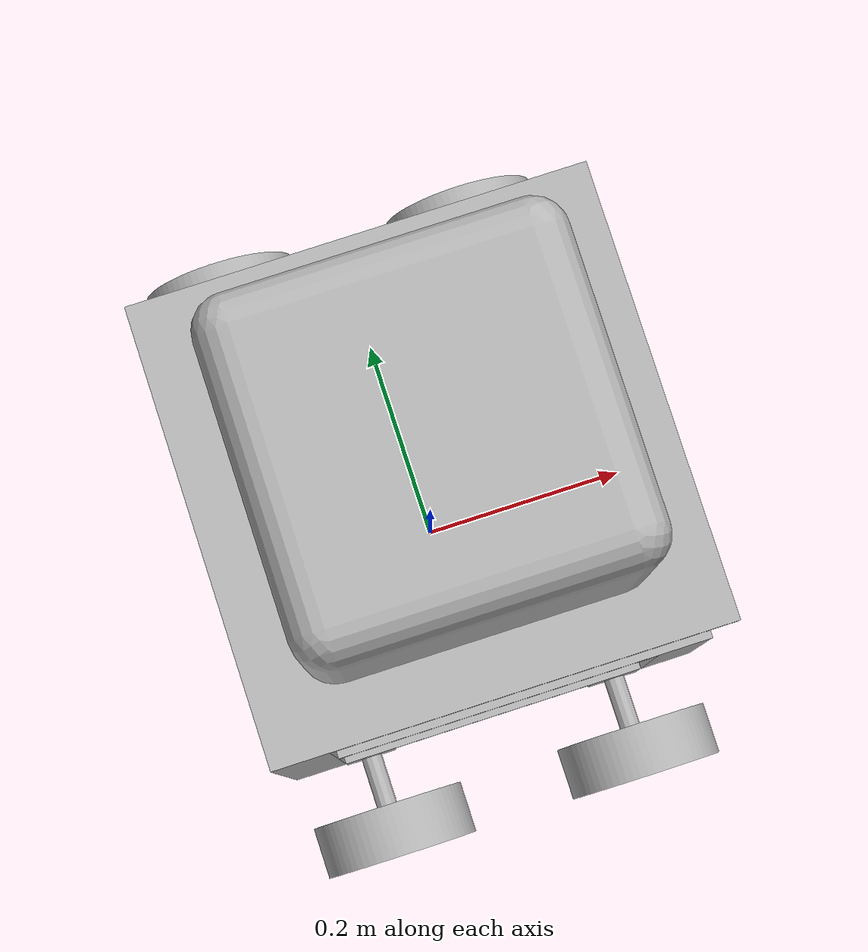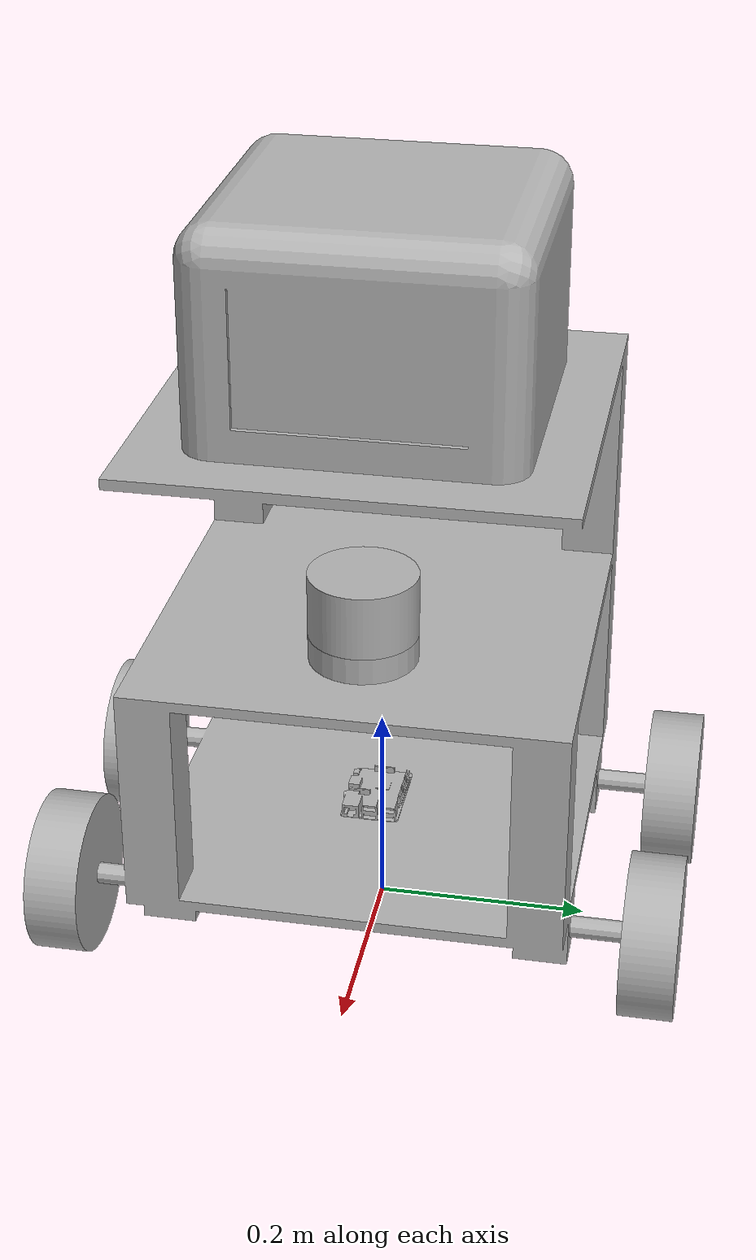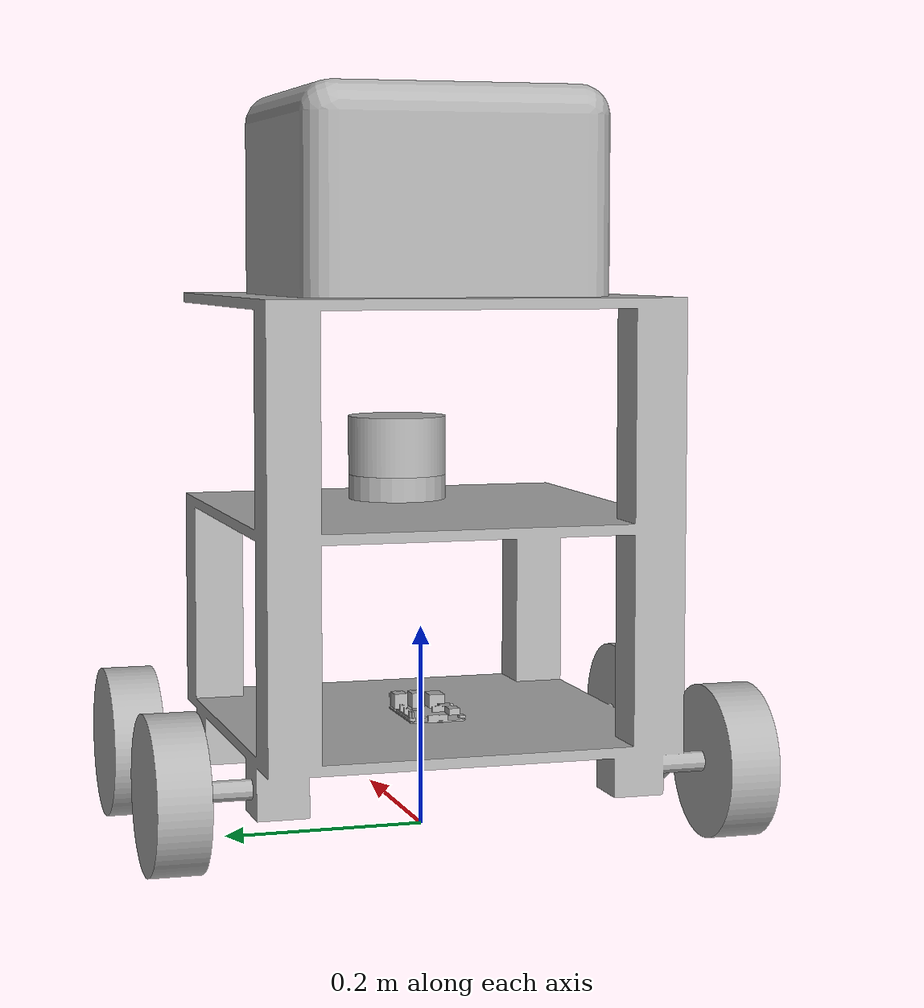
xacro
<?xml version="1.0" ?>
<robot name="Capstone" xmlns:xacro="http://www.ros.org/wiki/xacro">

<xacro:include filename="$(find Capstone_description)/urdf/materials.xacro" />
<xacro:include filename="$(find Capstone_description)/urdf/Capstone.trans" />
<xacro:include filename="$(find Capstone_description)/urdf/Capstone.gazebo" />
<link name="base_link">
  <inertial>
    <origin rpy="0 0 0" xyz="-0.007333091070869468 -7.78480598572087e-14 0.36099165808346584"/>
    <mass value="7.557165209995007"/>
    <inertia ixx="0.455001" ixy="0.0" ixz="0.003127" iyy="0.450316" iyz="-0.0" izz="0.244734"/>
  </inertial>
  <visual>
    <origin rpy="0 0 0" xyz="0 0 0"/>
    <geometry>
      <mesh filename="package://Capstone_description/meshes/base_link.stl" scale="0.001 0.001 0.001"/>
    </geometry>
    <material name="silver"/>
  </visual>
  <collision>
    <origin rpy="0 0 0" xyz="0 0 0"/>
    <geometry>
      <mesh filename="package://Capstone_description/meshes/base_link.stl" scale="0.001 0.001 0.001"/>
    </geometry>
  </collision>
</link>

<link name="lidar_1">
  <inertial>
    <origin rpy="0 0 0" xyz="-1.3877787807814457e-17 9.650038500203379e-18 0.030000000000000027"/>
    <mass value="0.4995132319207772"/>
    <inertia ixx="0.000462" ixy="-0.0" ixz="0.0" iyy="0.000462" iyz="0.0" izz="0.000624"/>
  </inertial>
  <visual>
    <origin rpy="0 0 0" xyz="-0.09 -0.0 -0.345"/>
    <geometry>
      <mesh filename="package://Capstone_description/meshes/lidar_1.stl" scale="0.001 0.001 0.001"/>
    </geometry>
    <material name="silver"/>
  </visual>
  <collision>
    <origin rpy="0 0 0" xyz="-0.09 -0.0 -0.345"/>
    <geometry>
      <mesh filename="package://Capstone_description/meshes/lidar_1.stl" scale="0.001 0.001 0.001"/>
    </geometry>
  </collision>
</link>

<link name="pi_1">
  <inertial>
    <origin rpy="0 0 0" xyz="-0.18603452748026733 -0.006754008365086289 0.005888830680916862"/>
    <mass value="0.018191716731074097"/>
    <inertia ixx="6e-06" ixy="-0.0" ixz="-1e-06" iyy="1.1e-05" iyz="0.0" izz="1.6e-05"/>
  </inertial>
  <visual>
    <origin rpy="0 0 0" xyz="-0.2 -0.0 -0.11"/>
    <geometry>
      <mesh filename="package://Capstone_description/meshes/pi_1.stl" scale="0.001 0.001 0.001"/>
    </geometry>
    <material name="silver"/>
  </visual>
  <collision>
    <origin rpy="0 0 0" xyz="-0.2 -0.0 -0.11"/>
    <geometry>
      <mesh filename="package://Capstone_description/meshes/pi_1.stl" scale="0.001 0.001 0.001"/>
    </geometry>
  </collision>
</link>

<link name="right_back_1">
  <inertial>
    <origin rpy="0 0 0" xyz="-2.7755575615628914e-17 -0.025000000000000078 0.0"/>
    <mass value="0.8217228284545802"/>
    <inertia ixx="0.001327" ixy="0.0" ixz="-0.0" iyy="0.002311" iyz="0.0" izz="0.001327"/>
  </inertial>
  <visual>
    <origin rpy="0 0 0" xyz="0.125 0.25 -0.075"/>
    <geometry>
      <mesh filename="package://Capstone_description/meshes/right_back_1.stl" scale="0.001 0.001 0.001"/>
    </geometry>
    <material name="silver"/>
  </visual>
  <collision>
    <origin rpy="0 0 0" xyz="0.125 0.25 -0.075"/>
    <geometry>
      <mesh filename="package://Capstone_description/meshes/right_back_1.stl" scale="0.001 0.001 0.001"/>
    </geometry>
  </collision>
</link>

<link name="right_front_1">
  <inertial>
    <origin rpy="0 0 0" xyz="-1.3877787807814457e-17 -0.025000000000000022 0.0"/>
    <mass value="0.8217228284545802"/>
    <inertia ixx="0.001327" ixy="0.0" ixz="-0.0" iyy="0.002311" iyz="0.0" izz="0.001327"/>
  </inertial>
  <visual>
    <origin rpy="0 0 0" xyz="-0.125 0.25 -0.075"/>
    <geometry>
      <mesh filename="package://Capstone_description/meshes/right_front_1.stl" scale="0.001 0.001 0.001"/>
    </geometry>
    <material name="silver"/>
  </visual>
  <collision>
    <origin rpy="0 0 0" xyz="-0.125 0.25 -0.075"/>
    <geometry>
      <mesh filename="package://Capstone_description/meshes/right_front_1.stl" scale="0.001 0.001 0.001"/>
    </geometry>
  </collision>
</link>

<link name="left_front_1">
  <inertial>
    <origin rpy="0 0 0" xyz="-1.3877787807814457e-17 0.025000000000000022 0.0"/>
    <mass value="0.8217228284545802"/>
    <inertia ixx="0.001327" ixy="-0.0" ixz="-0.0" iyy="0.002311" iyz="0.0" izz="0.001327"/>
  </inertial>
  <visual>
    <origin rpy="0 0 0" xyz="-0.125 -0.25 -0.075"/>
    <geometry>
      <mesh filename="package://Capstone_description/meshes/left_front_1.stl" scale="0.001 0.001 0.001"/>
    </geometry>
    <material name="silver"/>
  </visual>
  <collision>
    <origin rpy="0 0 0" xyz="-0.125 -0.25 -0.075"/>
    <geometry>
      <mesh filename="package://Capstone_description/meshes/left_front_1.stl" scale="0.001 0.001 0.001"/>
    </geometry>
  </collision>
</link>

<link name="left_back_1">
  <inertial>
    <origin rpy="0 0 0" xyz="-2.7755575615628914e-17 0.025000000000000022 0.0"/>
    <mass value="0.8217228284545802"/>
    <inertia ixx="0.001327" ixy="-0.0" ixz="-0.0" iyy="0.002311" iyz="0.0" izz="0.001327"/>
  </inertial>
  <visual>
    <origin rpy="0 0 0" xyz="0.125 -0.25 -0.075"/>
    <geometry>
      <mesh filename="package://Capstone_description/meshes/left_back_1.stl" scale="0.001 0.001 0.001"/>
    </geometry>
    <material name="silver"/>
  </visual>
  <collision>
    <origin rpy="0 0 0" xyz="0.125 -0.25 -0.075"/>
    <geometry>
      <mesh filename="package://Capstone_description/meshes/left_back_1.stl" scale="0.001 0.001 0.001"/>
    </geometry>
  </collision>
</link>

<joint name="Rigid2" type="fixed">
  <origin rpy="0 0 0" xyz="0.09 0.0 0.345"/>
  <parent link="base_link"/>
  <child link="lidar_1"/>
</joint>

<joint name="Rigid3" type="fixed">
  <origin rpy="0 0 0" xyz="0.2 0.0 0.11"/>
  <parent link="base_link"/>
  <child link="pi_1"/>
</joint>

<joint name="Rev4" type="continuous">
  <origin rpy="0 0 0" xyz="-0.125 -0.25 0.075"/>
  <parent link="base_link"/>
  <child link="right_back_1"/>
  <axis xyz="0.0 1.0 0.0"/>
</joint>

<joint name="Rev5" type="continuous">
  <origin rpy="0 0 0" xyz="0.125 -0.25 0.075"/>
  <parent link="base_link"/>
  <child link="right_front_1"/>
  <axis xyz="0.0 1.0 0.0"/>
</joint>

<joint name="Rev6" type="continuous">
  <origin rpy="0 0 0" xyz="0.125 0.25 0.075"/>
  <parent link="base_link"/>
  <child link="left_front_1"/>
  <axis xyz="0.0 1.0 0.0"/>
</joint>

<joint name="Rev7" type="continuous">
  <origin rpy="0 0 0" xyz="-0.125 0.25 0.075"/>
  <parent link="base_link"/>
  <child link="left_back_1"/>
  <axis xyz="0.0 1.0 0.0"/>
</joint>

</robot>

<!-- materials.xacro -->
<robot name="Capstone" xmlns:xacro="http://www.ros.org/wiki/xacro" >

<material name="silver">
  <color rgba="0.700 0.700 0.700 1.000"/>
</material>

</robot>

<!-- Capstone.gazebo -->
<robot name="Capstone" xmlns:xacro="http://www.ros.org/wiki/xacro" >

<xacro:property name="body_color" value="Gazebo/Silver" />
<xacro:property name="wheel_color" value="Gazebo/Black" />
<xacro:property name="pi_color" value="Gazebo/Green" />
<xacro:property name="lidar_color" value="Gazebo/Red" />

<gazebo>
  <plugin filename="libgazebo_ros_control.so" name="control"/>
</gazebo>
<gazebo reference="base_link">
  <material>${body_color}</material>
  <mu1>0.2</mu1>
  <mu2>0.2</mu2>
  <selfCollide>true</selfCollide>
  <gravity>true</gravity>
</gazebo>

<gazebo reference="lidar_1">
  <material>${lidar_color}</material>
  <mu1>0.2</mu1>
  <mu2>0.2</mu2>
  <selfCollide>true</selfCollide>
</gazebo>

<gazebo reference="pi_1">
  <material>${pi_color}</material>
  <mu1>0.2</mu1>
  <mu2>0.2</mu2>
  <selfCollide>true</selfCollide>
</gazebo>

<gazebo reference="right_back_1">
  <material>${wheel_color}</material>
  <mu1>0.2</mu1>
  <mu2>0.2</mu2>
  <selfCollide>true</selfCollide>
</gazebo>

<gazebo reference="right_front_1">
  <material>${wheel_color}</material>
  <mu1>0.2</mu1>
  <mu2>0.2</mu2>
  <selfCollide>true</selfCollide>
</gazebo>

<gazebo reference="left_front_1">
  <material>${wheel_color}</material>
  <mu1>0.2</mu1>
  <mu2>0.2</mu2>
  <selfCollide>true</selfCollide>
</gazebo>

<gazebo reference="left_back_1">
  <material>${wheel_color}</material>
  <mu1>0.2</mu1>
  <mu2>0.2</mu2>
  <selfCollide>true</selfCollide>
</gazebo>

<gazebo>
  <plugin name="skid_steer_drive_controller" filename="libgazebo_ros_skid_steer_drive.so">
    <updateRate>100.0</updateRate>
    <robotNamespace>/</robotNamespace>
    <leftFrontJoint>Rev6</leftFrontJoint>
    <rightFrontJoint>Rev5</rightFrontJoint>
    <leftRearJoint>Rev7</leftRearJoint>
    <rightRearJoint>Rev4</rightRearJoint>
    <wheelSeparation>0.550</wheelSeparation>
    <wheelDiameter>0.150</wheelDiameter>
    <robotBaseFrame>base_link</robotBaseFrame>
    <torque>20</torque>
    <topicName>/cmd_vel</topicName>
    <broadcastTF>false</broadcastTF>
  </plugin>
</gazebo>

 <gazebo reference="lidar_1">
    <sensor type="ray" name="lidar_sensor">
      <pose>0 0 0 0 0 0</pose>
      <visualize>true</visualize>
      <update_rate>40</update_rate>
      <ray>
        <scan>
          <horizontal>
            <samples>720</samples>
            <resolution>1</resolution>
            <min_angle>-1.57</min_angle>
            <max_angle>1.57</max_angle>
          </horizontal>
        </scan>
        <range>
          <min>0.10</min>
          <max>30.0</max>
          <resolution>0.01</resolution>
        </range>
        <noise>
          <type>gaussian</type>
          <mean>0.0</mean>
          <stddev>0.01</stddev>
        </noise>
      </ray>
      <plugin name="gazebo_ros_head_hokuyo_controller" filename="libgazebo_ros_laser.so">
        <topicName>/scan</topicName>
        <frameName>lidar_1</frameName>
      </plugin>
    </sensor>
  </gazebo>

</robot>
